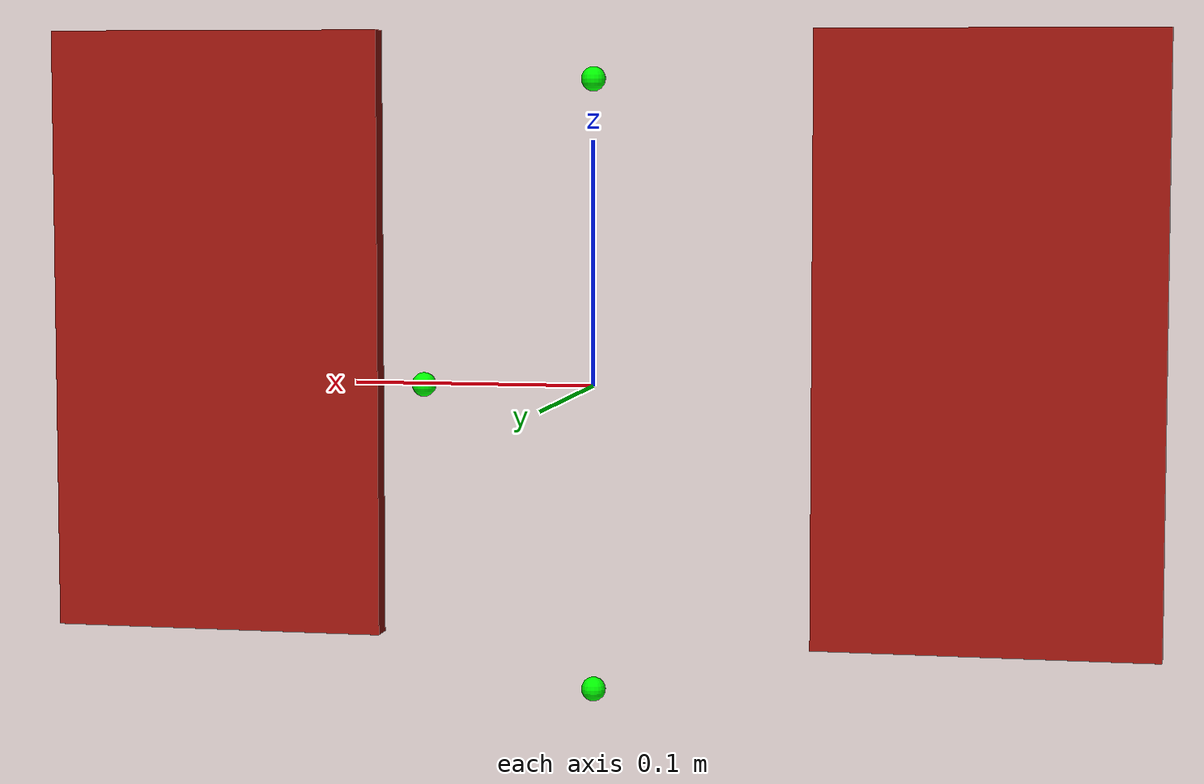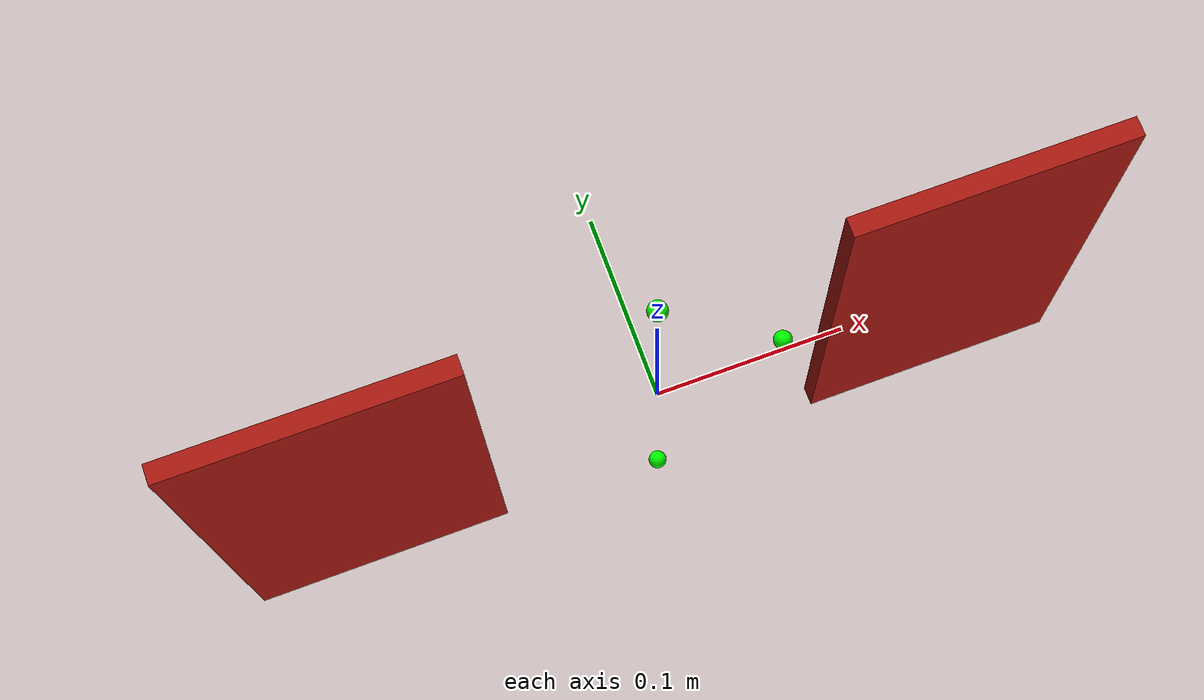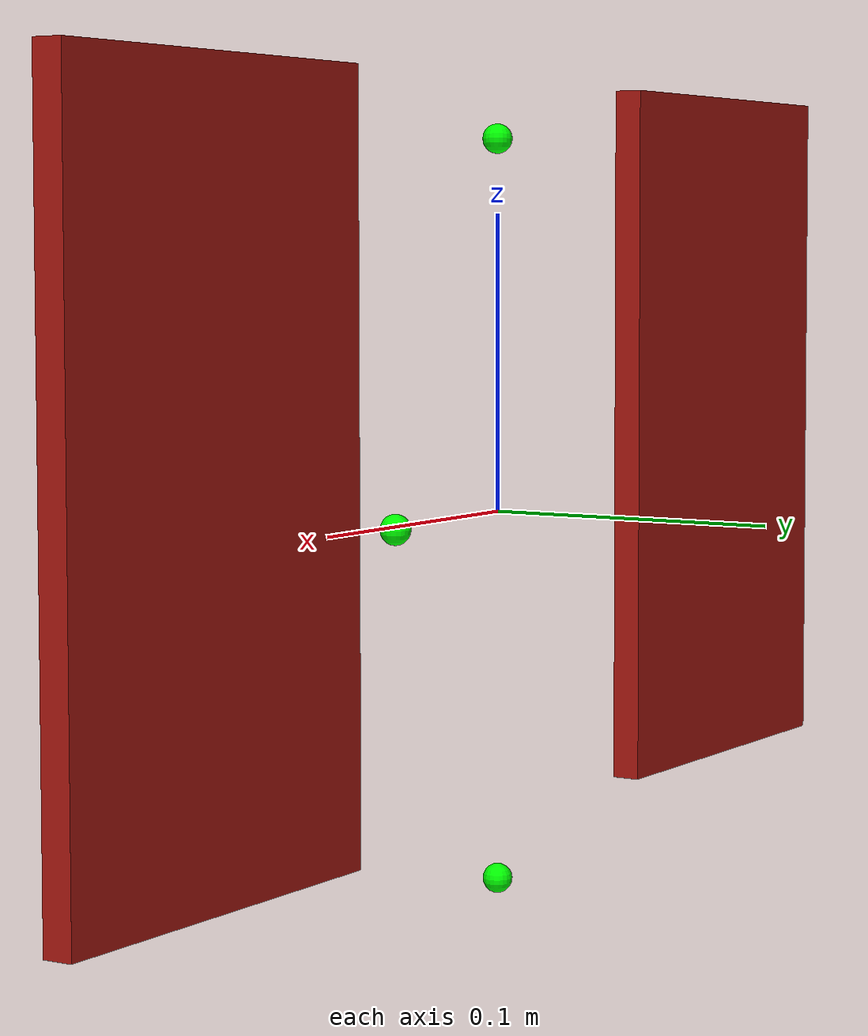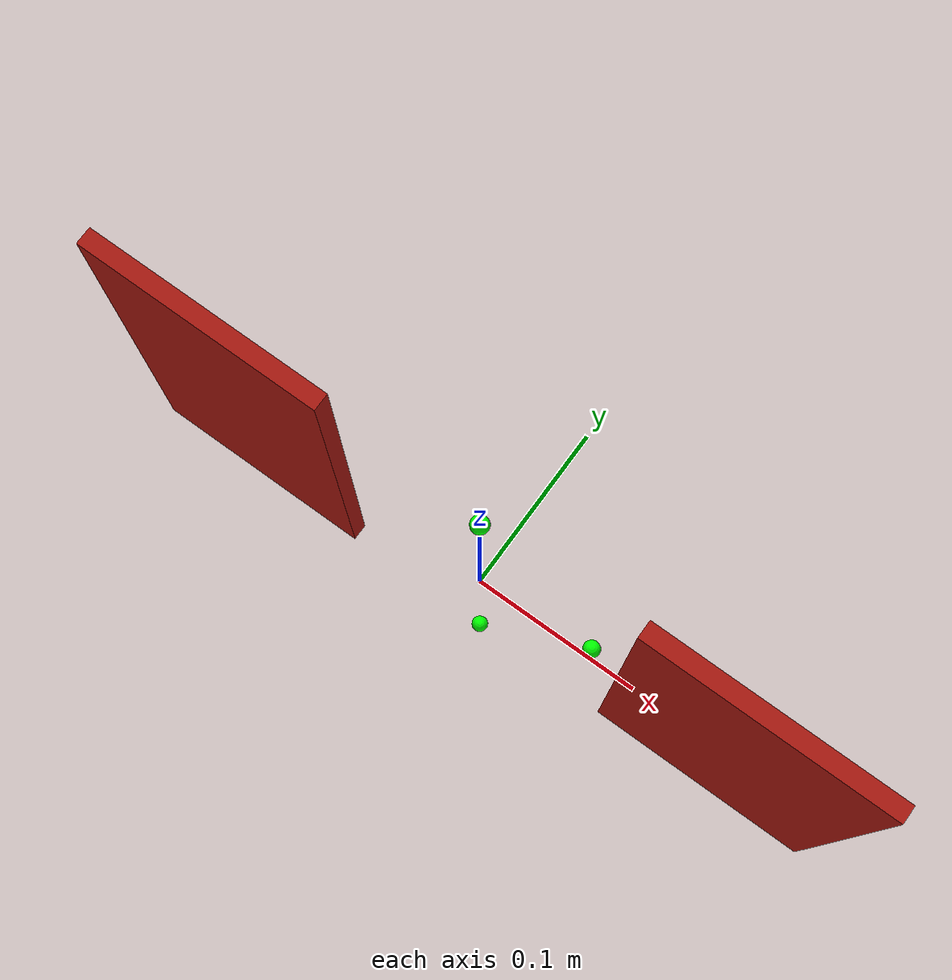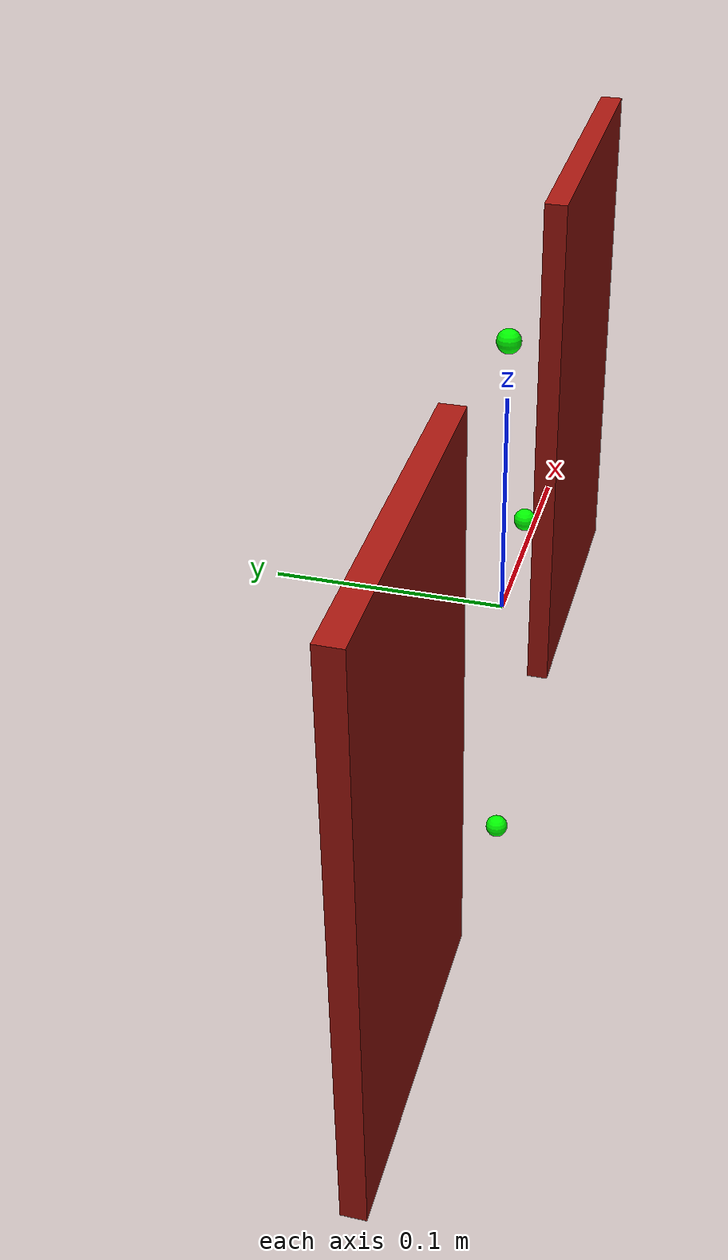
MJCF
<?xml version="1.0" encoding="utf-8"?>
<!-- from https://github.com/vikashplus/mj_envs/tree/master/mj_envs/hand_manipulation_suite/assets -->
<!-- Information about door can be found in this paper: https://arxiv.org/pdf/1709.10087.pdf -->

<mujoco model="door_frame">
  <asset>
    <texture file="../textures/white-bricks.png" type="cube" name="brick" />
    <material name="BrickWall" texture="brick" specular="1" shininess="0.3" rgba="1 0.3 0.3 1" />
  </asset>
    <worldbody>
      <body>
        <body name="object">
          <body name="frame" pos="0 0 0">
            <geom material="BrickWall" type="box" contype="1" size="0.07 0.005 0.125" name="wall_l" conaffinity="1" pos="-0.16 0 0.02" mass="1000" group="0"/>
            <geom material="BrickWall" type="box" contype="1" size="0.07 0.005 0.125" name="wall_r" conaffinity="1" pos="0.16 0 0.02" mass="1000" group="0"/>
          </body>
        </body>
      <site rgba="0 1 0 1" size="0.005" pos="0 0 -0.125" name="bottom_site"/>
      <site rgba="0 1 0 1" size="0.005" pos="0 0 0.125" name="top_site"/>
      <site rgba="0 1 0 1" size="0.005" pos="0.07 0.005 0" name="horizontal_radius_site"/>
      </body>
    </worldbody>
</mujoco>
